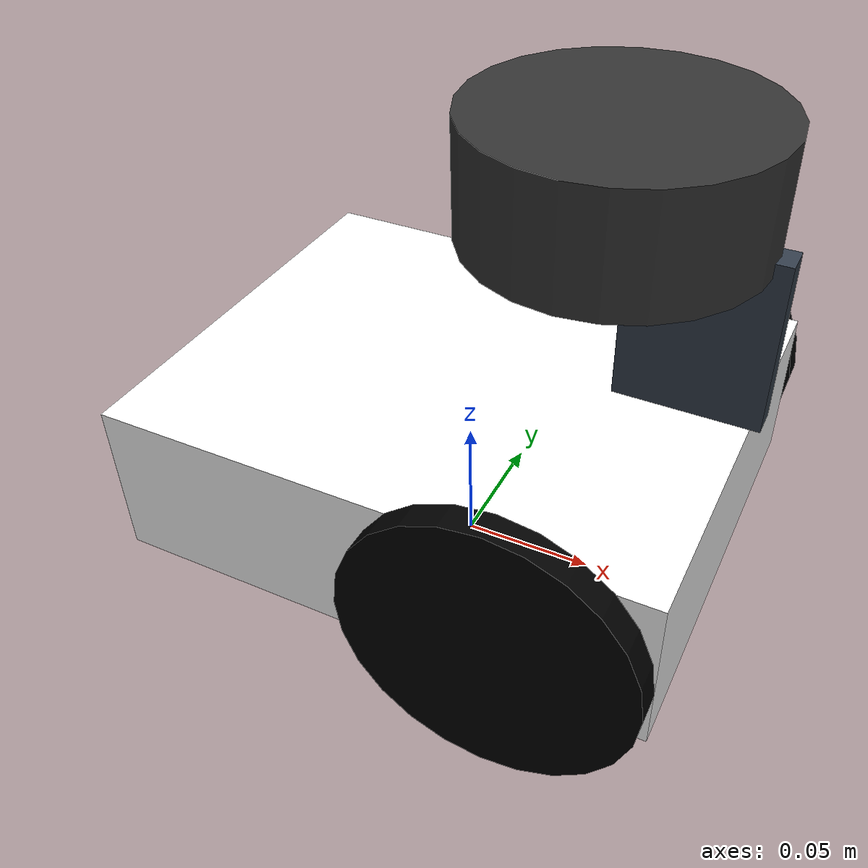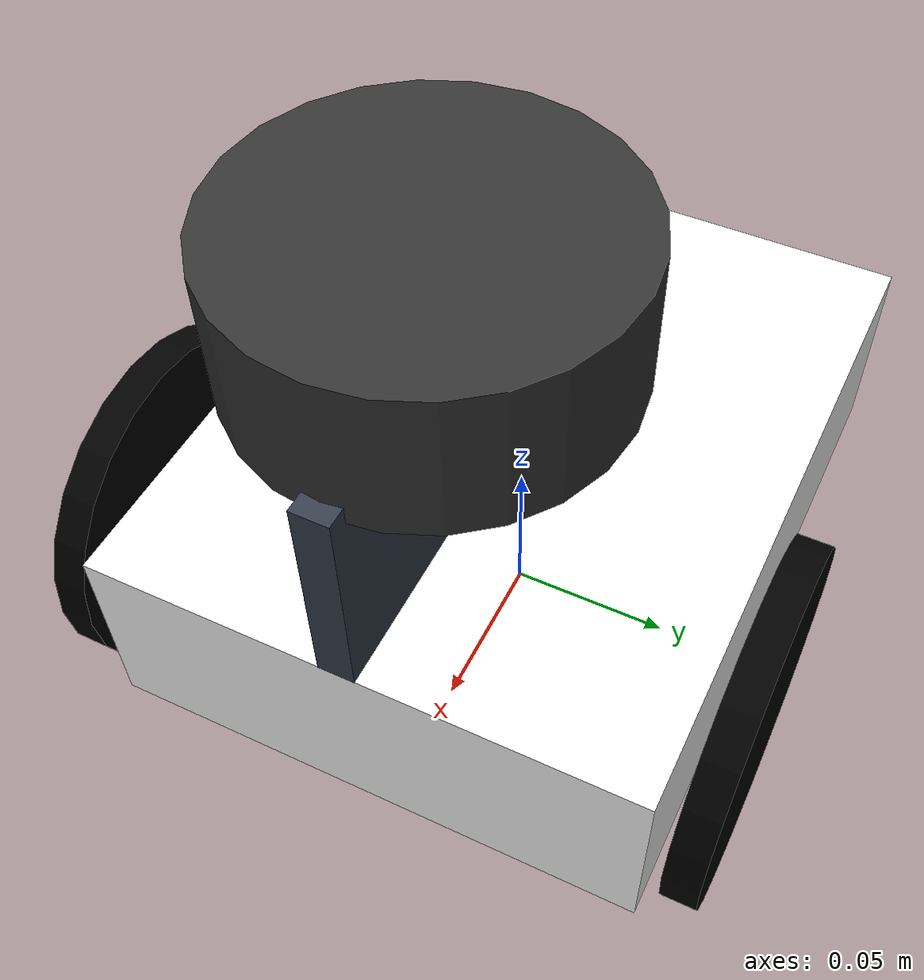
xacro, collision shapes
<?xml version="1.0"?>
<robot name="puzzlebot" xmlns:xacro="http://www.ros.org/wiki/xacro">

 <xacro:include filename="$(find puzzle_sim)/urdf/parameters.xacro"/>
  <xacro:include filename="$(find puzzle_sim)/urdf/materials.xacro"/>
  <xacro:include filename="$(find puzzle_sim)/urdf/macros.xacro"/>

  <!-- Arguments for using multiple robots if necessary -->
  <xacro:arg name="prefix" default=""/>
  <xacro:property name="prefix" value="$(arg prefix)"/>

  <!--
    base_footprint:reference frame fo assuming the robot is at z=0 (floor) -->
  <link name="${prefix}base_footprint"/>

  <joint name="${prefix}base_footprint_to_base_link" type="fixed">
    <parent link="${prefix}base_footprint"/>
    <child  link="${prefix}base_link"/>
    <!-- the chassis lays on the floor considering wheels radius-->
    <origin xyz="0 0 ${wheel_radius}" rpy="0 0 0"/>
  </joint>

  <link name="${prefix}base_link"/>

  <joint name="${prefix}base_link_to_chassis" type="fixed">
    <parent link="${prefix}base_link"/>
    <child  link="${prefix}chassis"/>
    <origin xyz="0 0 0" rpy="0 0 0"/>
  </joint>

  <link name="${prefix}chassis">

    <visual>
      <origin xyz="0.050 0 0.1" rpy="${PI/2} 0 ${PI}"/>
      <geometry>
        <mesh filename="file://${mesh_chassis}"/>
      </geometry>
      <material name="white"/>
    </visual>
    <collision>
      <origin xyz="0 0 0" rpy="0 0 0"/>
      <geometry>
        <box size="${chassis_length} ${chassis_width} ${chassis_height}"/>
      </geometry>
    </collision>

    <inertial>
      <origin xyz="0 0 0" rpy="0 0 0"/>
      <mass value="${chassis_mass}"/>
      <xacro:box_inertia
        m="${chassis_mass}"
        x="${chassis_length}"
        y="${chassis_width}"
        z="${chassis_height}"/>
    </inertial>

  </link>

  <link name="${prefix}caster_wheel">

    <visual>
      <origin xyz="0 0 0" rpy="0 0 0"/>
      <geometry>
        <mesh filename="file://${caster_wheel}"/>
      </geometry>
      <material name="dark_grey"/>
    </visual>

    <collision>
      <origin xyz="0 0 0" rpy="0 0 0"/>
      <geometry>
        <sphere radius="${caster_radius}"/>
      </geometry>
    </collision>

    <inertial>
      <origin xyz="0 0 0" rpy="0 0 0"/>
      <mass value="${caster_mass}"/>
      <xacro:sphere_inertia m="${caster_mass}" r="${caster_radius}"/>
    </inertial>

  </link>

  <joint name="${prefix}chassis_to_caster" type="fixed">
    <parent link="${prefix}chassis"/>
    <child  link="${prefix}caster_wheel"/>
    <origin xyz="${caster_x} ${caster_y} ${caster_z}" rpy="0 0 0"/>
  </joint>

  <gazebo reference="${prefix}caster_wheel">
    <mu1>0.01</mu1>
    <mu2>0.01</mu2>
    <kp>1000000.0</kp>
    <kd>100.0</kd>
  </gazebo>

  <gazebo reference="${prefix}right_wheel">
    <mu1>1.0</mu1>
    <mu2>1.0</mu2>
    <kp>1000000.0</kp>
    <kd>100.0</kd>
  </gazebo>

  <gazebo reference="${prefix}left_wheel">
    <mu1>1.0</mu1>
    <mu2>1.0</mu2>
    <kp>1000000.0</kp>
    <kd>100.0</kd>
  </gazebo>

  <!-- RIGHT WHEEL -->
  <link name="${prefix}right_wheel">

    <visual>
      <origin xyz="0 0 0" rpy="${PI/2} 0 0"/>
      <geometry>
        <mesh filename="file://${mesh_wheel}"/>
      </geometry>
      <material name="black"/>
    </visual>

    <collision>
      <origin xyz="0 0 0" rpy="${PI/2} 0 0"/>
      <geometry>
        <cylinder length="${wheel_thickness}" radius="${wheel_radius}"/>
      </geometry>
    </collision>

    <inertial>
      <origin xyz="0 0 0" rpy="0 0 0"/>
      <mass value="${wheel_mass}"/>
      <xacro:cylinder_inertia
        m="${wheel_mass}"
        r="${wheel_radius}"
        l="${wheel_thickness}"/>
    </inertial>

  </link>

  <joint name="${prefix}base_to_right_wheel" type="continuous">
    <parent link="${prefix}chassis"/>
    <child  link="${prefix}right_wheel"/>
    <origin xyz="${wheel_x_offset} -${wheel_separation} 0" rpy="0 0 0"/>
    <axis xyz="0 1 0"/>
  </joint>

  <!-- Left wheel -->
  <link name="${prefix}left_wheel">

    <visual>
      <origin xyz="0 0 0" rpy="${PI/2} 0 0"/>
      <geometry>
        <mesh filename="file://${mesh_wheel}"/>
      </geometry>
      <material name="black"/>
    </visual>

    <collision>
      <origin xyz="0 0 0" rpy="${PI/2} 0 0"/>
      <geometry>
        <cylinder length="${wheel_thickness}" radius="${wheel_radius}"/>
      </geometry>
    </collision>

    <inertial>
      <origin xyz="0 0 0" rpy="0 0 0"/>
      <mass value="${wheel_mass}"/>
      <xacro:cylinder_inertia
        m="${wheel_mass}"
        r="${wheel_radius}"
        l="${wheel_thickness}"/>
    </inertial>

  </link>

  <joint name="${prefix}base_to_left_wheel" type="continuous">
    <parent link="${prefix}chassis"/>
    <child  link="${prefix}left_wheel"/>
    <origin xyz="${wheel_x_offset} ${wheel_separation} 0" rpy="0 0 0"/>
    <axis xyz="0 1 0"/>
  </joint>

<!-- camera -->
  <link name="${prefix}camera_link">
    <visual>
      <origin xyz="0 0 0" rpy="0 0 ${PI}"/>
      <geometry>
      </geometry>
      <material name="blue"/>
    </visual>

    <collision>
      <origin xyz="0 0 0" rpy="0 0 0"/>
      <geometry>
        <box size="${camera_length} ${camera_width} ${camera_height}"/>
      </geometry>
    </collision>

    <inertial>
      <origin xyz="0 0 0" rpy="0 0 0"/>
      <mass value="${camera_mass}"/>
      <xacro:box_inertia
        m="${camera_mass}"
        x="${camera_length}"
        y="${camera_width}"
        z="${camera_height}"/>
    </inertial>
  </link>

  <joint name="${prefix}chassis_to_camera" type="fixed">
    <parent link="${prefix}chassis"/>
    <child  link="${prefix}camera_link"/>
    <origin xyz="${camera_x} ${camera_y} ${camera_z}"
            rpy="0 0 0"/>
  </joint>

<!-- optical frame -->
  <link name="${prefix}camera_color_optical_frame"/>

  <joint name="${prefix}optical_frame" type="fixed">
    <parent link="${prefix}camera_link"/>
    <child  link="${prefix}camera_color_optical_frame"/>
    <origin xyz="0.0 0 0"
            rpy="-${PI/2} 0 -${PI/2}"/>
  </joint>

  <!-- lidar -->
  <link name="${prefix}lidar_link">

    <visual>
      <origin xyz="0.07 -0.013 -0.04" rpy="${PI/2} 0 0"/>
      <geometry>
      </geometry>
      <material name="dark_grey"/>
    </visual>

    <collision>
      <origin xyz="0 0 0" rpy="0 0 0"/>
      <geometry>
        <cylinder length="0.04" radius="0.05"/>
      </geometry>
    </collision>

    <inertial>
      <origin xyz="0 0 0" rpy="0 0 0"/>
      <mass value="${lidar_mass}"/>
      <xacro:cylinder_inertia
        m="${lidar_mass}"
        r="0.05"
        l="0.04"/>
    </inertial>

  </link>

  <joint name="${prefix}chassis_to_lidar" type="fixed">
    <parent link="${prefix}chassis"/>
    <child  link="${prefix}lidar_link"/>
    <origin xyz="${lidar_x} ${lidar_y} ${lidar_z}" rpy="0 0 ${PI}"/>
  </joint>

  <gazebo>
    <plugin name="diff_drive" filename="libgazebo_ros_diff_drive.so">
      <ros>
        <namespace></namespace>
      </ros>
      <left_joint>${prefix}base_to_left_wheel</left_joint>
      <right_joint>${prefix}base_to_right_wheel</right_joint>
      <wheel_separation>${wheel_separation * 2}</wheel_separation>  <!-- ← antes: 0.18 hardcodeado -->
      <wheel_diameter>${wheel_radius * 2}</wheel_diameter>           <!-- ← antes: 0.102 hardcodeado -->
      <max_wheel_torque>20</max_wheel_torque>
      <max_wheel_acceleration>1.0</max_wheel_acceleration>
      <publish_odom>true</publish_odom>
      <publish_odom_tf>true</publish_odom_tf>
      <publish_wheel_tf>true</publish_wheel_tf>
      <odometry_frame>odom</odometry_frame>
      <robot_base_frame>${prefix}base_footprint</robot_base_frame>
    </plugin>
  </gazebo>

  <gazebo reference="${prefix}lidar_link">
    <sensor name="lidar" type="ray">
      <always_on>true</always_on>
      <visualize>true</visualize>
      <update_rate>10</update_rate>
      <ray>
        <scan>
          <horizontal>
            <samples>360</samples>
            <resolution>1</resolution>
            <min_angle>-3.14159</min_angle>
            <max_angle>3.14159</max_angle>
          </horizontal>
        </scan>
        <range>
          <min>0.12</min>
          <max>3.5</max>
        </range>
      </ray>
      <plugin filename="libgazebo_ros_ray_sensor.so" name="scan">
        <ros>
          <topic>/scan</topic>
          <remapping>~/out:=/scan</remapping>
        </ros>
        <output_type>sensor_msgs/LaserScan</output_type>
        <frame_name>${prefix}lidar_link</frame_name>
      </plugin>
    </sensor>
  </gazebo>

</robot>

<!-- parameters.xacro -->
<robot xmlns:xacro="http://www.ros.org/wiki/xacro">

  <xacro:property name="PI" value="3.14159265358979"/>

  <xacro:property name="chassis_length" value="0.20"/>
  <xacro:property name="chassis_width"  value="0.16"/>
  <xacro:property name="chassis_height" value="0.06"/>
  <xacro:property name="chassis_mass"   value="0.710"/>

  <xacro:property name="wheel_radius"    value="0.051"/>
  <xacro:property name="wheel_thickness" value="0.01"/>
  <xacro:property name="wheel_mass"      value="0.03"/>

  <!-- Distancia desde el centro del chassis al centro de cada rueda en Y -->
  <xacro:property name="wheel_separation" value="0.09"/>
  <!-- Offset en X: las ruedas no están centradas, van ligeramente adelante -->
  <xacro:property name="wheel_x_offset"   value="0.05"/>

  <xacro:property name="caster_radius" value="0.0065"/>
  <xacro:property name="caster_mass"   value="0.012"/>
  <!-- Posición relativa al chassis: atrás y abajo -->
  <xacro:property name="caster_x" value="-0.095"/>
  <xacro:property name="caster_y" value="0.0"/>
  <xacro:property name="caster_z" value="-0.0445"/>

  <xacro:property name="camera_mass"   value="0.007"/>
  <xacro:property name="camera_length" value="0.05"/>
  <xacro:property name="camera_width"  value="0.01"/>
  <xacro:property name="camera_height" value="0.06"/>

  <!-- camera position over the chassis-->
  <xacro:property name="camera_x" value="0.08"/>
  <xacro:property name="camera_y" value="0.0"/>
  <xacro:property name="camera_z" value="0.07"/>

  <xacro:property name="lidar_mass"   value="0.1"/>
  <xacro:property name="lidar_x"      value="0.05"/>
  <xacro:property name="lidar_y"      value="0.0"/>
  <xacro:property name="lidar_z"      value="0.115"/>

  <xacro:property name="mesh_chassis"
    value="$(find puzzle_sim)/meshes/MCR2_puzzlebot_jetson_lidar_base.stl"/>
  <xacro:property name="mesh_wheel"
    value="$(find puzzle_sim)/meshes/Puzzlebot_Wheel.stl"/>
  <xacro:property name="mesh_camera"
    value="$(find puzzle_sim)/meshes/camera.stl"/>
  <xacro:property name="mesh_lidar"
    value="$(find puzzle_sim)/meshes/LiDAR.stl"/>
  <xacro:property name="caster_wheel"
    value="$(find puzzle_sim)/meshes/Puzzlebot_Caster_Wheel.stl"/>

</robot>

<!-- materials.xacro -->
<robot xmlns:xacro="http://www.ros.org/wiki/xacro">

  <!--
      Materials for RVIZ visualization (rgb color only)
  -->

  <material name="black">
    <color rgba="0.0 0.0 0.0 1.0"/>
  </material>

  <material name="dark_grey">
    <color rgba="0.2 0.2 0.2 1.0"/>
  </material>

  <material name="light_grey">
    <color rgba="0.7 0.7 0.7 1.0"/>
  </material>

  <material name="yellow">
    <color rgba="0.95 0.76 0.05 1.0"/>
  </material>

  <material name="white">
    <color rgba="1.0 1.0 1.0 1.0"/>
  </material>

  <material name="red">
    <color rgba="0.80 0.13 0.13 1.0"/>
  </material>

  <material name="blue">
    <color rgba="0.20 0.24 0.29 1.0"/>
  </material>

</robot>

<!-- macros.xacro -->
<robot xmlns:xacro="http://www.ros.org/wiki/xacro">

  <!--
    box_inertia
      m : mass in kg
      x : (lenght) en metros
      y : (width) en metros
      z : (height) en metros
  -->
  <xacro:macro name="box_inertia" params="m x y z">
    <inertia
      ixx="${m/12.0 * (y*y + z*z)}"
      ixy="0.0" ixz="0.0"
      iyy="${m/12.0 * (x*x + z*z)}"
      iyz="0.0"
      izz="${m/12.0 * (x*x + y*y)}"/>
  </xacro:macro>

  <!--
    cylinder_inertia
      m : mass in kg
      r : radius in m
      l : lenght (as height)
  -->
  <xacro:macro name="cylinder_inertia" params="m r l">
    <inertia
      ixx="${m/12.0 * (3*r*r + l*l)}"
      ixy="0.0" ixz="0.0"
      iyy="${m/12.0 * (3*r*r + l*l)}"
      iyz="0.0"
      izz="${m/2.0 * r*r}"/>
  </xacro:macro>

  <!--
    sphere_inertia
      m : masa en kg
      r : radius
  -->
  <xacro:macro name="sphere_inertia" params="m r">
    <inertia
      ixx="${2.0/5.0 * m * r*r}"
      ixy="0.0" ixz="0.0"
      iyy="${2.0/5.0 * m * r*r}"
      iyz="0.0"
      izz="${2.0/5.0 * m * r*r}"/>
  </xacro:macro>

</robot>
